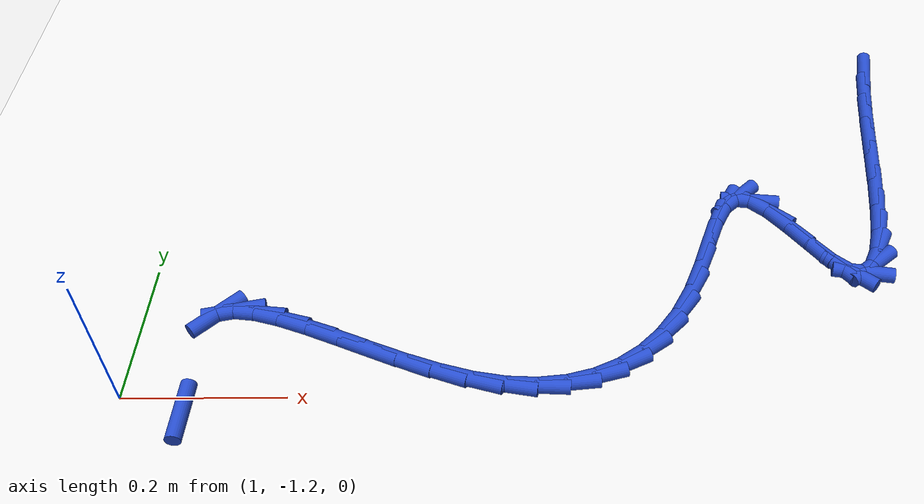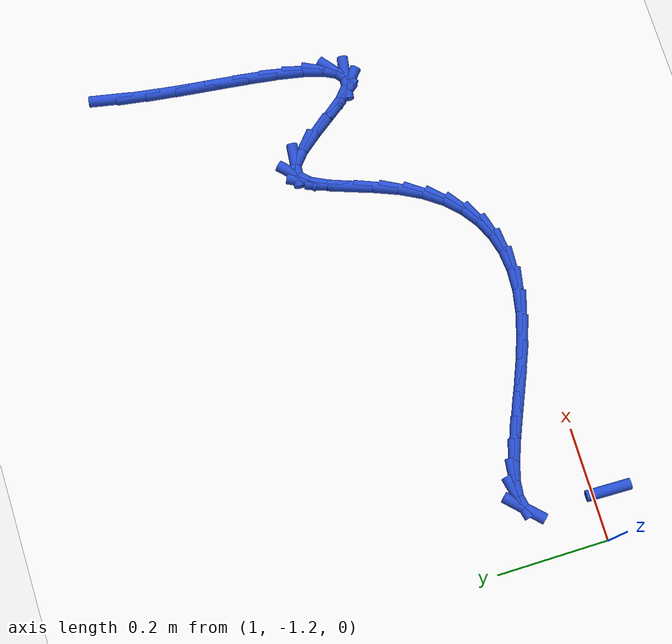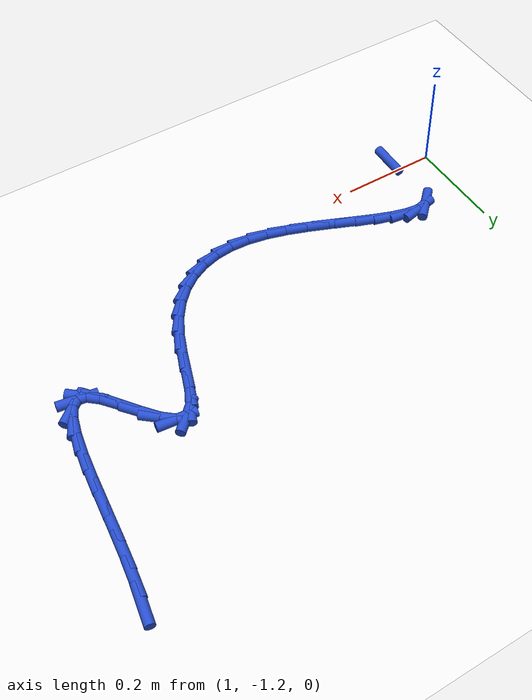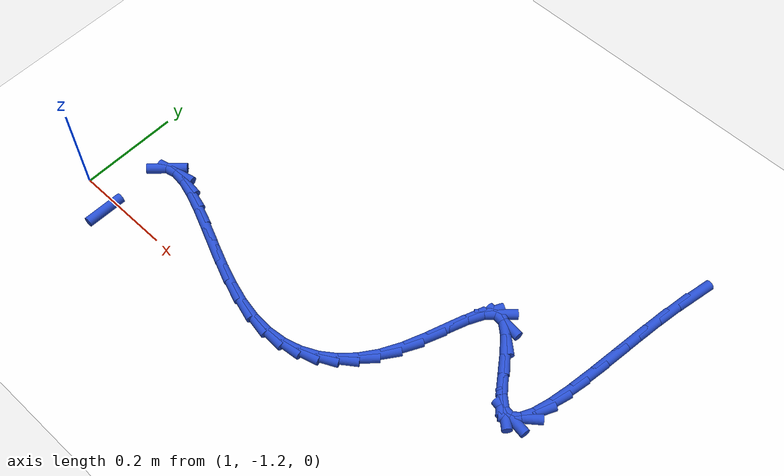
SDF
<sdf version="1.6">
 <world name="default">
  <model name="ground_plane">
   <static>1</static>
   <link name="link">
    <collision name="collision">
     <geometry><plane><normal>0 0 1</normal><size>100 100</size></plane></geometry>
     <surface><friction><ode><mu>100</mu><mu2>50</mu2></ode></friction></surface>
    </collision>
    <visual name="visual">
     <cast_shadows>0</cast_shadows>
     <geometry><plane><normal>0 0 1</normal><size>100 100</size></plane></geometry>
     <material>
      <script><uri>file://media/materials/scripts/gazebo.material</uri><name>Gazebo/WhiteGlow</name></script>
     </material>
    </visual>
   </link>
  </model>
  <model name="line">
   <link name="link_150">
    <pose>2.0098088315829292 -0.6002300942274247 0.01 0 1.57 1.3799385315472479</pose>
    <collision name="collision">
     <geometry><cylinder><radius>0.01</radius><length>0.08</length></cylinder></geometry>
    </collision>
    <visual name="visual">
     <material>
      <script><name>Gazebo/Blue</name><uri>file://media/materials/scripts/gazebo.material</uri></script>
     </material>
     <geometry><cylinder><radius>0.01</radius><length>0.08</length></cylinder></geometry>
    </visual>
   </link>
   <link name="link_151">
    <pose>2.0004787223337455 -0.6485202089028871 0.01 0 1.57 1.4218461851548199</pose>
    <collision name="collision">
     <geometry><cylinder><radius>0.01</radius><length>0.08</length></cylinder></geometry>
    </collision>
    <visual name="visual">
     <material>
      <script><name>Gazebo/Blue</name><uri>file://media/materials/scripts/gazebo.material</uri></script>
     </material>
     <geometry><cylinder><radius>0.01</radius><length>0.08</length></cylinder></geometry>
    </visual>
   </link>
   <link name="link_152">
    <pose>1.9926795503395665 -0.7004933629096466 0.01 0 1.57 1.4452651931537681</pose>
    <collision name="collision">
     <geometry><cylinder><radius>0.01</radius><length>0.08</length></cylinder></geometry>
    </collision>
    <visual name="visual">
     <material>
      <script><name>Gazebo/Blue</name><uri>file://media/materials/scripts/gazebo.material</uri></script>
     </material>
     <geometry><cylinder><radius>0.01</radius><length>0.08</length></cylinder></geometry>
    </visual>
   </link>
   <link name="link_153">
    <pose>1.985902207811488 -0.7541988111817444 0.01 0 1.57 1.454203351600046</pose>
    <collision name="collision">
     <geometry><cylinder><radius>0.01</radius><length>0.08</length></cylinder></geometry>
    </collision>
    <visual name="visual">
     <material>
      <script><name>Gazebo/Blue</name><uri>file://media/materials/scripts/gazebo.material</uri></script>
     </material>
     <geometry><cylinder><radius>0.01</radius><length>0.08</length></cylinder></geometry>
    </visual>
   </link>
   <link name="link_154">
    <pose>1.9796375869606042 -0.8076858086532211 0.01 0 1.57 1.4493917455063399</pose>
    <collision name="collision">
     <geometry><cylinder><radius>0.01</radius><length>0.08</length></cylinder></geometry>
    </collision>
    <visual name="visual">
     <material>
      <script><name>Gazebo/Blue</name><uri>file://media/materials/scripts/gazebo.material</uri></script>
     </material>
     <geometry><cylinder><radius>0.01</radius><length>0.08</length></cylinder></geometry>
    </visual>
   </link>
   <link name="link_155">
    <pose>1.9733765799980094 -0.8590036102581172 0.01 0 1.57 1.4284020318000297</pose>
    <collision name="collision">
     <geometry><cylinder><radius>0.01</radius><length>0.08</length></cylinder></geometry>
    </collision>
    <visual name="visual">
     <material>
      <script><name>Gazebo/Blue</name><uri>file://media/materials/scripts/gazebo.material</uri></script>
     </material>
     <geometry><cylinder><radius>0.01</radius><length>0.08</length></cylinder></geometry>
    </visual>
   </link>
   <link name="link_156">
    <pose>1.966610079134799 -0.9062014709304738 0.01 0 1.57 1.3838103496599174</pose>
    <collision name="collision">
     <geometry><cylinder><radius>0.01</radius><length>0.08</length></cylinder></geometry>
    </collision>
    <visual name="visual">
     <material>
      <script><name>Gazebo/Blue</name><uri>file://media/materials/scripts/gazebo.material</uri></script>
     </material>
     <geometry><cylinder><radius>0.01</radius><length>0.08</length></cylinder></geometry>
    </visual>
   </link>
   <link name="link_157">
    <pose>1.9588289765820668 -0.9473286456043315 0.01 0 1.57 1.296801828870825</pose>
    <collision name="collision">
     <geometry><cylinder><radius>0.01</radius><length>0.08</length></cylinder></geometry>
    </collision>
    <visual name="visual">
     <material>
      <script><name>Gazebo/Blue</name><uri>file://media/materials/scripts/gazebo.material</uri></script>
     </material>
     <geometry><cylinder><radius>0.01</radius><length>0.08</length></cylinder></geometry>
    </visual>
   </link>
   <link name="link_158">
    <pose>1.9495241645509085 -0.9804343892137313 0.01 0 1.57 1.1151046432814251</pose>
    <collision name="collision">
     <geometry><cylinder><radius>0.01</radius><length>0.08</length></cylinder></geometry>
    </collision>
    <visual name="visual">
     <material>
      <script><name>Gazebo/Blue</name><uri>file://media/materials/scripts/gazebo.material</uri></script>
     </material>
     <geometry><cylinder><radius>0.01</radius><length>0.08</length></cylinder></geometry>
    </visual>
   </link>
   <link name="link_159">
    <pose>1.9381865352524181 -1.0035679566927136 0.01 0 1.57 0.6794241391011123</pose>
    <collision name="collision">
     <geometry><cylinder><radius>0.01</radius><length>0.08</length></cylinder></geometry>
    </collision>
    <visual name="visual">
     <material>
      <script><name>Gazebo/Blue</name><uri>file://media/materials/scripts/gazebo.material</uri></script>
     </material>
     <geometry><cylinder><radius>0.01</radius><length>0.08</length></cylinder></geometry>
    </visual>
   </link>
   <link name="link_160">
    <pose>1.9243069808976905 -1.0147786029753194 0.01 0 1.57 -0.15601225149464387</pose>
    <collision name="collision">
     <geometry><cylinder><radius>0.01</radius><length>0.08</length></cylinder></geometry>
    </collision>
    <visual name="visual">
     <material>
      <script><name>Gazebo/Blue</name><uri>file://media/materials/scripts/gazebo.material</uri></script>
     </material>
     <geometry><cylinder><radius>0.01</radius><length>0.08</length></cylinder></geometry>
    </visual>
   </link>
   <link name="link_161">
    <pose>1.9073763936978203 -1.0121155829955895 0.01 0 1.57 -0.7226978128021981</pose>
    <collision name="collision">
     <geometry><cylinder><radius>0.01</radius><length>0.08</length></cylinder></geometry>
    </collision>
    <visual name="visual">
     <material>
      <script><name>Gazebo/Blue</name><uri>file://media/materials/scripts/gazebo.material</uri></script>
     </material>
     <geometry><cylinder><radius>0.01</radius><length>0.08</length></cylinder></geometry>
    </visual>
   </link>
   <link name="link_162">
    <pose>1.8869941973296758 -0.9941414955885769 0.01 0 1.57 -0.9032960560631025</pose>
    <collision name="collision">
     <geometry><cylinder><radius>0.01</radius><length>0.08</length></cylinder></geometry>
    </collision>
    <visual name="visual">
     <material>
      <script><name>Gazebo/Blue</name><uri>file://media/materials/scripts/gazebo.material</uri></script>
     </material>
     <geometry><cylinder><radius>0.01</radius><length>0.08</length></cylinder></geometry>
    </visual>
   </link>
   <link name="link_163">
    <pose>1.8639085013479098 -0.9648521186709823 0.01 0 1.57 -0.9400060019134131</pose>
    <collision name="collision">
     <geometry><cylinder><radius>0.01</radius><length>0.08</length></cylinder></geometry>
    </collision>
    <visual name="visual">
     <material>
      <script><name>Gazebo/Blue</name><uri>file://media/materials/scripts/gazebo.material</uri></script>
     </material>
     <geometry><cylinder><radius>0.01</radius><length>0.08</length></cylinder></geometry>
    </visual>
   </link>
   <link name="link_164">
    <pose>1.8395581546959947 -0.9315103642566417 0.01 0 1.57 -0.8940830081885243</pose>
    <collision name="collision">
     <geometry><cylinder><radius>0.01</radius><length>0.08</length></cylinder></geometry>
    </collision>
    <visual name="visual">
     <material>
      <script><name>Gazebo/Blue</name><uri>file://media/materials/scripts/gazebo.material</uri></script>
     </material>
     <geometry><cylinder><radius>0.01</radius><length>0.08</length></cylinder></geometry>
    </visual>
   </link>
   <link name="link_165">
    <pose>1.8153914542290923 -0.9014238321170579 0.01 0 1.57 -0.7139281600233893</pose>
    <collision name="collision">
     <geometry><cylinder><radius>0.01</radius><length>0.08</length></cylinder></geometry>
    </collision>
    <visual name="visual">
     <material>
      <script><name>Gazebo/Blue</name><uri>file://media/materials/scripts/gazebo.material</uri></script>
     </material>
     <geometry><cylinder><radius>0.01</radius><length>0.08</length></cylinder></geometry>
    </visual>
   </link>
   <link name="link_166">
    <pose>1.792856696802362 -0.8819001220237331 0.01 0 1.57 -0.10494075339222199</pose>
    <collision name="collision">
     <geometry><cylinder><radius>0.01</radius><length>0.08</length></cylinder></geometry>
    </collision>
    <visual name="visual">
     <material>
      <script><name>Gazebo/Blue</name><uri>file://media/materials/scripts/gazebo.material</uri></script>
     </material>
     <geometry><cylinder><radius>0.01</radius><length>0.08</length></cylinder></geometry>
    </visual>
   </link>
   <link name="link_167">
    <pose>1.7733123928011363 -0.8798415658245469 0.01 0 1.57 0.7648945419377065</pose>
    <collision name="collision">
     <geometry><cylinder><radius>0.01</radius><length>0.08</length></cylinder></geometry>
    </collision>
    <visual name="visual">
     <material>
      <script><name>Gazebo/Blue</name><uri>file://media/materials/scripts/gazebo.material</uri></script>
     </material>
     <geometry><cylinder><radius>0.01</radius><length>0.08</length></cylinder></geometry>
    </visual>
   </link>
   <link name="link_168">
    <pose>1.756705839149588 -0.8957807210540084 0.01 0 1.57 1.103313794294994</pose>
    <collision name="collision">
     <geometry><cylinder><radius>0.01</radius><length>0.08</length></cylinder></geometry>
    </collision>
    <visual name="visual">
     <material>
      <script><name>Gazebo/Blue</name><uri>file://media/materials/scripts/gazebo.material</uri></script>
     </material>
     <geometry><cylinder><radius>0.01</radius><length>0.08</length></cylinder></geometry>
    </visual>
   </link>
   <link name="link_169">
    <pose>1.7418622543360154 -0.9251854356225191 0.01 0 1.57 1.2128961134068792</pose>
    <collision name="collision">
     <geometry><cylinder><radius>0.01</radius><length>0.08</length></cylinder></geometry>
    </collision>
    <visual name="visual">
     <material>
      <script><name>Gazebo/Blue</name><uri>file://media/materials/scripts/gazebo.material</uri></script>
     </material>
     <geometry><cylinder><radius>0.01</radius><length>0.08</length></cylinder></geometry>
    </visual>
   </link>
   <link name="link_170">
    <pose>1.727575851896251 -0.9633836108234355 0.01 0 1.57 1.2315310431138495</pose>
    <collision name="collision">
     <geometry><cylinder><radius>0.01</radius><length>0.08</length></cylinder></geometry>
    </collision>
    <visual name="visual">
     <material>
      <script><name>Gazebo/Blue</name><uri>file://media/materials/scripts/gazebo.material</uri></script>
     </material>
     <geometry><cylinder><radius>0.01</radius><length>0.08</length></cylinder></geometry>
    </visual>
   </link>
   <link name="link_171">
    <pose>1.7126408453661242 -1.0057031479501128 0.01 0 1.57 1.1886012291931092</pose>
    <collision name="collision">
     <geometry><cylinder><radius>0.01</radius><length>0.08</length></cylinder></geometry>
    </collision>
    <visual name="visual">
     <material>
      <script><name>Gazebo/Blue</name><uri>file://media/materials/scripts/gazebo.material</uri></script>
     </material>
     <geometry><cylinder><radius>0.01</radius><length>0.08</length></cylinder></geometry>
    </visual>
   </link>
   <link name="link_172">
    <pose>1.695851448281467 -1.0474719482959083 0.01 0 1.57 1.0845184951983653</pose>
    <collision name="collision">
     <geometry><cylinder><radius>0.01</radius><length>0.08</length></cylinder></geometry>
    </collision>
    <visual name="visual">
     <material>
      <script><name>Gazebo/Blue</name><uri>file://media/materials/scripts/gazebo.material</uri></script>
     </material>
     <geometry><cylinder><radius>0.01</radius><length>0.08</length></cylinder></geometry>
    </visual>
   </link>
   <link name="link_173">
    <pose>1.6761873023688827 -1.0846712171949857 0.01 0 1.57 0.9495969858566305</pose>
    <collision name="collision">
     <geometry><cylinder><radius>0.01</radius><length>0.08</length></cylinder></geometry>
    </collision>
    <visual name="visual">
     <material>
      <script><name>Gazebo/Blue</name><uri>file://media/materials/scripts/gazebo.material</uri></script>
     </material>
     <geometry><cylinder><radius>0.01</radius><length>0.08</length></cylinder></geometry>
    </visual>
   </link>
   <link name="link_174">
    <pose>1.6535031512783205 -1.1163653353080867 0.01 0 1.57 0.796421518664133</pose>
    <collision name="collision">
     <geometry><cylinder><radius>0.01</radius><length>0.08</length></cylinder></geometry>
    </collision>
    <visual name="visual">
     <material>
      <script><name>Gazebo/Blue</name><uri>file://media/materials/scripts/gazebo.material</uri></script>
     </material>
     <geometry><cylinder><radius>0.01</radius><length>0.08</length></cylinder></geometry>
    </visual>
   </link>
   <link name="link_175">
    <pose>1.6279116490878602 -1.1425273580997306 0.01 0 1.57 0.6278424084691755</pose>
    <collision name="collision">
     <geometry><cylinder><radius>0.01</radius><length>0.08</length></cylinder></geometry>
    </collision>
    <visual name="visual">
     <material>
      <script><name>Gazebo/Blue</name><uri>file://media/materials/scripts/gazebo.material</uri></script>
     </material>
     <geometry><cylinder><radius>0.01</radius><length>0.08</length></cylinder></geometry>
    </visual>
   </link>
   <link name="link_176">
    <pose>1.5995254864952277 -1.163130470053446 0.01 0 1.57 0.4502548620349279</pose>
    <collision name="collision">
     <geometry><cylinder><radius>0.01</radius><length>0.08</length></cylinder></geometry>
    </collision>
    <visual name="visual">
     <material>
      <script><name>Gazebo/Blue</name><uri>file://media/materials/scripts/gazebo.material</uri></script>
     </material>
     <geometry><cylinder><radius>0.01</radius><length>0.08</length></cylinder></geometry>
    </visual>
   </link>
   <link name="link_177">
    <pose>1.5684573541981472 -1.1781478556527647 0.01 0 1.57 0.2726328787826211</pose>
    <collision name="collision">
     <geometry><cylinder><radius>0.01</radius><length>0.08</length></cylinder></geometry>
    </collision>
    <visual name="visual">
     <material>
      <script><name>Gazebo/Blue</name><uri>file://media/materials/scripts/gazebo.material</uri></script>
     </material>
     <geometry><cylinder><radius>0.01</radius><length>0.08</length></cylinder></geometry>
    </visual>
   </link>
   <link name="link_178">
    <pose>1.5348199428943434 -1.1875526993812155 0.01 0 1.57 0.10394841888771632</pose>
    <collision name="collision">
     <geometry><cylinder><radius>0.01</radius><length>0.08</length></cylinder></geometry>
    </collision>
    <visual name="visual">
     <material>
      <script><name>Gazebo/Blue</name><uri>file://media/materials/scripts/gazebo.material</uri></script>
     </material>
     <geometry><cylinder><radius>0.01</radius><length>0.08</length></cylinder></geometry>
    </visual>
   </link>
   <link name="link_179">
    <pose>1.4987259432815425 -1.191318185722328 0.01 0 1.57 -0.04940800166905733</pose>
    <collision name="collision">
     <geometry><cylinder><radius>0.01</radius><length>0.08</length></cylinder></geometry>
    </collision>
    <visual name="visual">
     <material>
      <script><name>Gazebo/Blue</name><uri>file://media/materials/scripts/gazebo.material</uri></script>
     </material>
     <geometry><cylinder><radius>0.01</radius><length>0.08</length></cylinder></geometry>
    </visual>
   </link>
   <link name="link_180">
    <pose>1.4602880460574676 -1.1894174991596325 0.01 0 1.57 -0.18403530367430235</pose>
    <collision name="collision">
     <geometry><cylinder><radius>0.01</radius><length>0.08</length></cylinder></geometry>
    </collision>
    <visual name="visual">
     <material>
      <script><name>Gazebo/Blue</name><uri>file://media/materials/scripts/gazebo.material</uri></script>
     </material>
     <geometry><cylinder><radius>0.01</radius><length>0.08</length></cylinder></geometry>
    </visual>
   </link>
   <link name="link_181">
    <pose>1.4196329902963718 -1.1818499044909074 0.01 0 1.57 -0.28712842262401295</pose>
    <collision name="collision">
     <geometry><cylinder><radius>0.01</radius><length>0.08</length></cylinder></geometry>
    </collision>
    <visual name="visual">
     <material>
      <script><name>Gazebo/Blue</name><uri>file://media/materials/scripts/gazebo.material</uri></script>
     </material>
     <geometry><cylinder><radius>0.01</radius><length>0.08</length></cylinder></geometry>
    </visual>
   </link>
   <link name="link_182">
    <pose>1.3772801709346834 -1.1693436182371204 0.01 0 1.57 -0.3536162981366842</pose>
    <collision name="collision">
     <geometry><cylinder><radius>0.01</radius><length>0.08</length></cylinder></geometry>
    </collision>
    <visual name="visual">
     <material>
      <script><name>Gazebo/Blue</name><uri>file://media/materials/scripts/gazebo.material</uri></script>
     </material>
     <geometry><cylinder><radius>0.01</radius><length>0.08</length></cylinder></geometry>
    </visual>
   </link>
   <link name="link_183">
    <pose>1.3341846643210409 -1.153435684054615 0.01 0 1.57 -0.392242061835606</pose>
    <collision name="collision">
     <geometry><cylinder><radius>0.01</radius><length>0.08</length></cylinder></geometry>
    </collision>
    <visual name="visual">
     <material>
      <script><name>Gazebo/Blue</name><uri>file://media/materials/scripts/gazebo.material</uri></script>
     </material>
     <geometry><cylinder><radius>0.01</radius><length>0.08</length></cylinder></geometry>
    </visual>
   </link>
   <link name="link_184">
    <pose>1.291324229465063 -1.1357052551577482 0.01 0 1.57 -0.40742056662879456</pose>
    <collision name="collision">
     <geometry><cylinder><radius>0.01</radius><length>0.08</length></cylinder></geometry>
    </collision>
    <visual name="visual">
     <material>
      <script><name>Gazebo/Blue</name><uri>file://media/materials/scripts/gazebo.material</uri></script>
     </material>
     <geometry><cylinder><radius>0.01</radius><length>0.08</length></cylinder></geometry>
    </visual>
   </link>
   <link name="link_185">
    <pose>1.249676625376368 -1.1177314847608752 0.01 0 1.57 -0.39904930034532093</pose>
    <collision name="collision">
     <geometry><cylinder><radius>0.01</radius><length>0.08</length></cylinder></geometry>
    </collision>
    <visual name="visual">
     <material>
      <script><name>Gazebo/Blue</name><uri>file://media/materials/scripts/gazebo.material</uri></script>
     </material>
     <geometry><cylinder><radius>0.01</radius><length>0.08</length></cylinder></geometry>
    </visual>
   </link>
   <link name="link_186">
    <pose>1.2102196110645744 -1.101093526078353 0.01 0 1.57 -0.3615399347835964</pose>
    <collision name="collision">
     <geometry><cylinder><radius>0.01</radius><length>0.08</length></cylinder></geometry>
    </collision>
    <visual name="visual">
     <material>
      <script><name>Gazebo/Blue</name><uri>file://media/materials/scripts/gazebo.material</uri></script>
     </material>
     <geometry><cylinder><radius>0.01</radius><length>0.08</length></cylinder></geometry>
    </visual>
   </link>
   <link name="link_187">
    <pose>1.1739309455393 -1.0873705323245375 0.01 0 1.57 -0.27960180019956316</pose>
    <collision name="collision">
     <geometry><cylinder><radius>0.01</radius><length>0.08</length></cylinder></geometry>
    </collision>
    <visual name="visual">
     <material>
      <script><name>Gazebo/Blue</name><uri>file://media/materials/scripts/gazebo.material</uri></script>
     </material>
     <geometry><cylinder><radius>0.01</radius><length>0.08</length></cylinder></geometry>
    </visual>
   </link>
   <link name="link_188">
    <pose>1.1417883878101642 -1.0781416567137851 0.01 0 1.57 -0.11626663746878908</pose>
    <collision name="collision">
     <geometry><cylinder><radius>0.01</radius><length>0.08</length></cylinder></geometry>
    </collision>
    <visual name="visual">
     <material>
      <script><name>Gazebo/Blue</name><uri>file://media/materials/scripts/gazebo.material</uri></script>
     </material>
     <geometry><cylinder><radius>0.01</radius><length>0.08</length></cylinder></geometry>
    </visual>
   </link>
   <link name="link_189">
    <pose>1.1147696968867844 -1.0749860524604518 0.01 0 1.57 0.21176022684201357</pose>
    <collision name="collision">
     <geometry><cylinder><radius>0.01</radius><length>0.08</length></cylinder></geometry>
    </collision>
    <visual name="visual">
     <material>
      <script><name>Gazebo/Blue</name><uri>file://media/materials/scripts/gazebo.material</uri></script>
     </material>
     <geometry><cylinder><radius>0.01</radius><length>0.08</length></cylinder></geometry>
    </visual>
   </link>
   <link name="link_190">
    <pose>1.0938526317787796 -1.079482872778894 0.01 0 1.57 0.7814338125599883</pose>
    <collision name="collision">
     <geometry><cylinder><radius>0.01</radius><length>0.08</length></cylinder></geometry>
    </collision>
    <visual name="visual">
     <material>
      <script><name>Gazebo/Blue</name><uri>file://media/materials/scripts/gazebo.material</uri></script>
     </material>
     <geometry><cylinder><radius>0.01</radius><length>0.08</length></cylinder></geometry>
    </visual>
   </link>
   <link name="link_195">
    <pose>1.0810548207555262 -1.2261943723193243 0.01 0 1.57 1.5500935382314238</pose>
    <collision name="collision">
     <geometry><cylinder><radius>0.01</radius><length>0.08</length></cylinder></geometry>
    </collision>
    <visual name="visual">
     <material>
      <script><name>Gazebo/Blue</name><uri>file://media/materials/scripts/gazebo.material</uri></script>
     </material>
     <geometry><cylinder><radius>0.01</radius><length>0.08</length></cylinder></geometry>
    </visual>
   </link>
  </model>
 </world>
</sdf>
